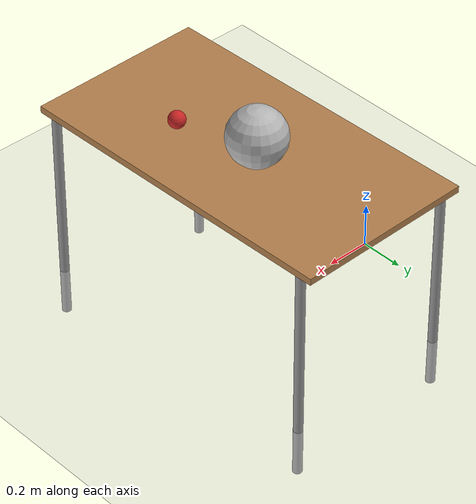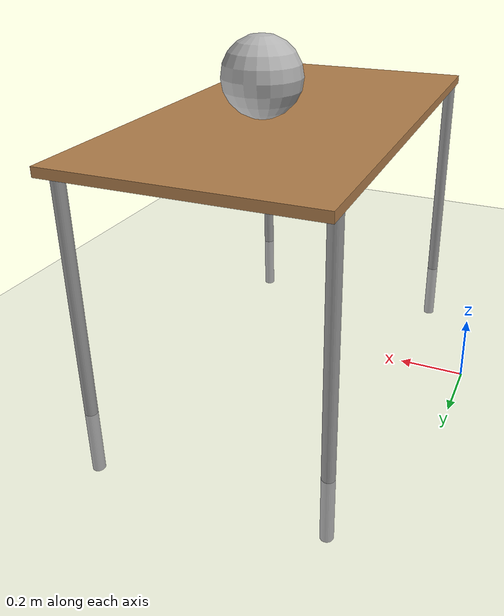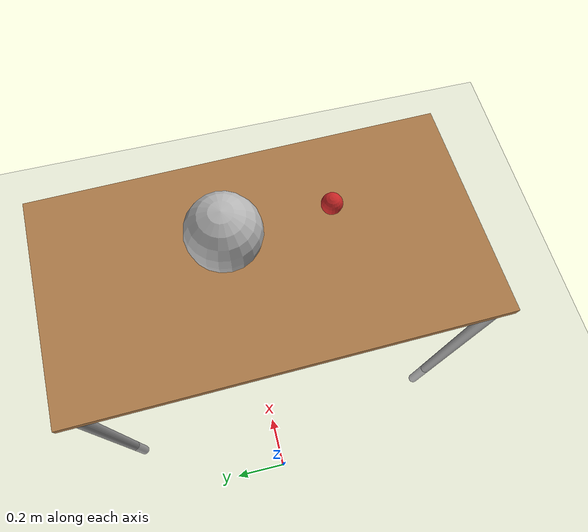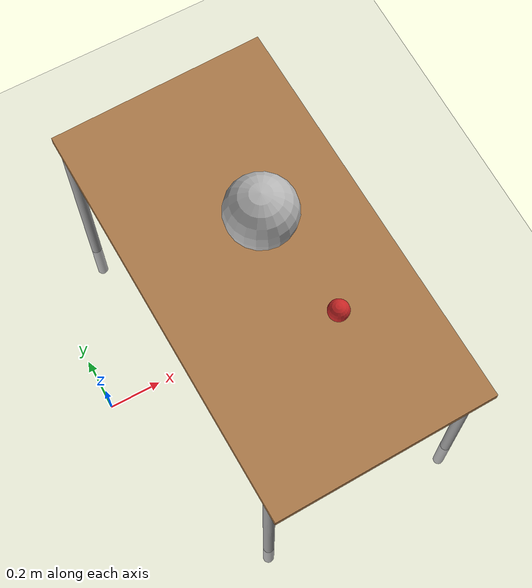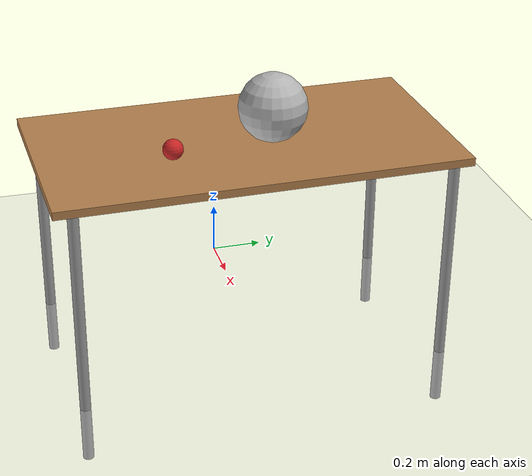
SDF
<sdf version="1.7">
 <world name="default">
  <light name="sun" type="directional">
   <pose>0 0 10 0 -0 0</pose>
   <diffuse>0.8 0.8 0.8 1</diffuse>
   <specular>0.2 0.2 0.2 1</specular>
   <attenuation>
    <range>1000</range>
    <constant>0.9</constant>
    <linear>0.01</linear>
    <quadratic>0.001</quadratic>
   </attenuation>
   <direction>-0.5 0.1 -0.9</direction>
   <spot><inner_angle>0</inner_angle><outer_angle>0</outer_angle><falloff>0</falloff></spot>
  </light>
  <model name="ground_plane">
   <static>1</static>
   <link name="link">
    <collision name="collision">
     <geometry><plane><normal>0 0 1</normal><size>100 100</size></plane></geometry>
     <surface><friction><ode><mu>100</mu><mu2>50</mu2></ode></friction></surface>
    </collision>
    <visual name="visual">
     <cast_shadows>0</cast_shadows>
     <geometry><plane><normal>0 0 1</normal><size>100 100</size></plane></geometry>
     <material>
      <script><uri>file://media/materials/scripts/gazebo.material</uri><name>Gazebo/Grey</name></script>
     </material>
    </visual>
   </link>
  </model>
  <gravity>0 0 -9.8</gravity>
  <magnetic_field>6e-06 2.3e-05 -4.2e-05</magnetic_field>
  <atmosphere type="adiabatic"/>
  <physics type="ode">
   <max_step_size>0.001</max_step_size>
   <real_time_factor>1</real_time_factor>
   <real_time_update_rate>1000</real_time_update_rate>
  </physics>
  <scene><ambient>0.8 0.8 0.8 1</ambient><background>0.7 0.7 0.7 1</background><shadows>1</shadows></scene>
  <audio><device>default</device></audio>
  <spherical_coordinates>
   <surface_model>EARTH_WGS84</surface_model>
   <latitude_deg>0</latitude_deg>
   <longitude_deg>0</longitude_deg>
   <elevation>0</elevation>
   <heading_deg>0</heading_deg>
  </spherical_coordinates>
  <model name="table">
   <static>1</static>
   <link name="link">
    <collision name="surface">
     <pose>0 0 1 0 -0 0</pose>
     <geometry><box><size>1.5 0.8 0.03</size></box></geometry>
     <surface><friction><ode><mu>0.6</mu><mu2>0.6</mu2></ode></friction></surface>
    </collision>
    <visual name="visual1">
     <pose>0 0 1 0 -0 0</pose>
     <geometry><box><size>1.5 0.8 0.03</size></box></geometry>
     <material>
      <script><uri>file://media/materials/scripts/gazebo.material</uri><name>Gazebo/Wood</name></script>
     </material>
    </visual>
    <collision name="front_left_leg">
     <pose>0.68 0.38 0.5 0 -0 0</pose>
     <geometry><cylinder><radius>0.02</radius><length>1</length></cylinder></geometry>
    </collision>
    <visual name="front_left_leg">
     <pose>0.68 0.38 0.5 0 -0 0</pose>
     <geometry><cylinder><radius>0.02</radius><length>1</length></cylinder></geometry>
     <material>
      <script><uri>file://media/materials/scripts/gazebo.material</uri><name>Gazebo/Grey</name></script>
     </material>
    </visual>
    <collision name="front_right_leg">
     <pose>0.68 -0.38 0.5 0 -0 0</pose>
     <geometry><cylinder><radius>0.02</radius><length>1</length></cylinder></geometry>
    </collision>
    <visual name="front_right_leg">
     <pose>0.68 -0.38 0.5 0 -0 0</pose>
     <geometry><cylinder><radius>0.02</radius><length>1</length></cylinder></geometry>
     <material>
      <script><uri>file://media/materials/scripts/gazebo.material</uri><name>Gazebo/Grey</name></script>
     </material>
    </visual>
    <collision name="back_right_leg">
     <pose>-0.68 -0.38 0.5 0 -0 0</pose>
     <geometry><cylinder><radius>0.02</radius><length>1</length></cylinder></geometry>
    </collision>
    <visual name="back_right_leg">
     <pose>-0.68 -0.38 0.5 0 -0 0</pose>
     <geometry><cylinder><radius>0.02</radius><length>1</length></cylinder></geometry>
     <material>
      <script><uri>file://media/materials/scripts/gazebo.material</uri><name>Gazebo/Grey</name></script>
     </material>
    </visual>
    <collision name="back_left_leg">
     <pose>-0.68 0.38 0.5 0 -0 0</pose>
     <geometry><cylinder><radius>0.02</radius><length>1</length></cylinder></geometry>
    </collision>
    <visual name="back_left_leg">
     <pose>-0.68 0.38 0.5 0 -0 0</pose>
     <geometry><cylinder><radius>0.02</radius><length>1</length></cylinder></geometry>
     <material>
      <script><uri>file://media/materials/scripts/gazebo.material</uri><name>Gazebo/Grey</name></script>
     </material>
    </visual>
   </link>
   <pose>0.628743 -0.054706 -0.216115 0 0 -1.54736</pose>
  </model>
  <plugin name="gazebo_link_attacher" filename="libgazebo_link_attacher.so"/>
  <plugin name="gazebo_ros_init" filename="libgazebo_ros_init.so"/>
  <plugin name="gazebo_ros_factory" filename="libgazebo_ros_factory.so"/>
  <model name="cricket_ball">
   <link name="link">
    <pose>0 0 0.0375 0 -0 0</pose>
    <inertial>
     <mass>0.1467</mass>
     <inertia>
      <ixx>8.25187e-05</ixx>
      <ixy>0</ixy>
      <ixz>0</ixz>
      <iyy>8.25187e-05</iyy>
      <iyz>0</iyz>
      <izz>8.25187e-05</izz>
     </inertia>
    </inertial>
    <collision name="collision">
     <geometry><sphere><radius>0.0375</radius></sphere></geometry>
     <surface>
      <contact>
       <poissons_ratio>0.347</poissons_ratio>
       <elastic_modulus>8.8e+09</elastic_modulus>
       <ode><kp>100000</kp><kd>100</kd><max_vel>100</max_vel><min_depth>0.001</min_depth></ode>
      </contact>
      <friction>
       <torsional>
        <coefficient>1</coefficient>
        <use_patch_radius>0</use_patch_radius>
        <surface_radius>0.01</surface_radius>
       </torsional>
      </friction>
     </surface>
    </collision>
    <visual name="visual">
     <geometry><sphere><radius>0.0375</radius></sphere></geometry>
     <material>
      <script><uri>file://media/materials/scripts/gazebo.material</uri><name>Gazebo/Red</name></script>
     </material>
    </visual>
    <velocity_decay><linear>0</linear><angular>0.005</angular></velocity_decay>
   </link>
   <pose>0.743367 -0.324722 0.797871 -0 -0 -0</pose>
  </model>
  <model name="frc2016_ball">
   <pose>0.67371 0.058157 0.925506 0 -0 0</pose>
   <link name="link">
    <inertial>
     <mass>0.213</mass>
     <inertia>
      <ixx>0.00322667</ixx>
      <ixy>0</ixy>
      <ixz>0</ixz>
      <iyy>0.00322667</iyy>
      <iyz>0</iyz>
      <izz>0.00322667</izz>
     </inertia>
    </inertial>
    <visual name="visual"><geometry><sphere><radius>0.127</radius></sphere></geometry></visual>
    <collision name="collision">
     <geometry><sphere><radius>0.127</radius></sphere></geometry>
     <surface>
      <bounce><restitution_coefficient>0.15937</restitution_coefficient><threshold>0</threshold></bounce>
      <contact><ode><max_vel>100</max_vel><min_depth>0.001</min_depth></ode></contact>
     </surface>
    </collision>
   </link>
  </model>
 </world>
</sdf>
